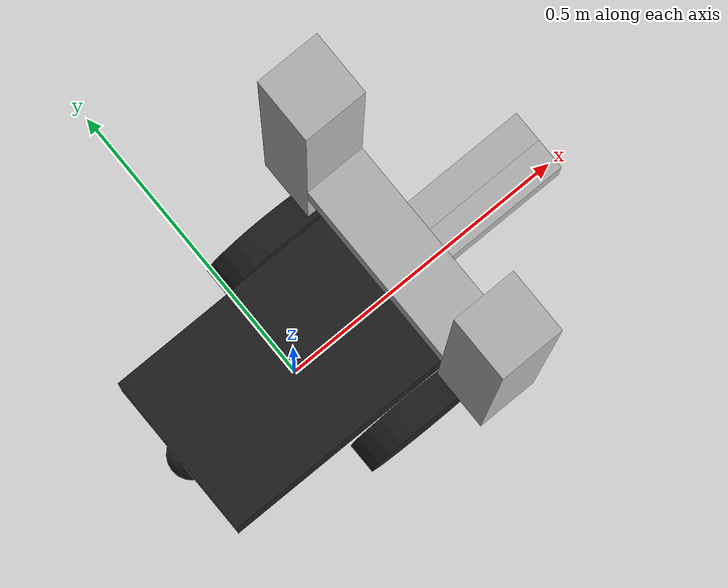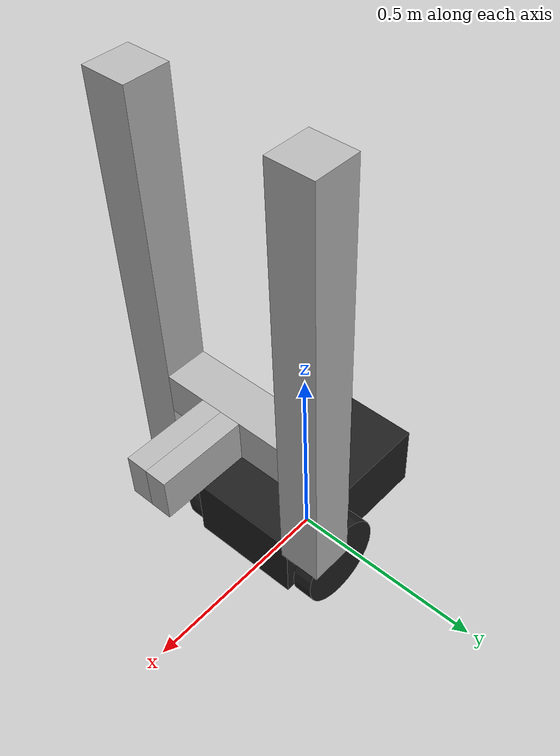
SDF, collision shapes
<?xml version="1.0" ?>
<sdf version="1.3">
  <model name="simple_mobile_manipulator">

    <include>
      <uri>model://my_gripper</uri>
      <pose>0.2 0 0.51 0 0 0</pose>
    </include>

    <include>
      <uri>model://pioneer2dx</uri>
      <pose>0 0 0 0 0 0</pose>
    </include>

    <joint name="arm_rgripper_joint" type="revolute">
      <parent>pioneer2dx::chassis</parent>
      <child>simple_gripper::right_riser</child>
      <axis>
        <limit>
          <lower>0</lower>
          <upper>0</upper>
        </limit>
        <xyz>0 0 1</xyz>
      </axis>
    </joint>

    <joint name="arm_lgripper_joint" type="revolute">
      <parent>pioneer2dx::chassis</parent>
      <child>simple_gripper::left_riser</child>
      <axis>
        <limit>
          <lower>0</lower>
          <upper>0</upper>
        </limit>
        <xyz>0 0 1</xyz>
      </axis>
    </joint>

  </model>
</sdf>

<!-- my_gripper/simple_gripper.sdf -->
<sdf version="1.4">
    <model name="simple_gripper">
        <link name="left_riser">
            <pose>0 -0.2 0.25 0 0 0</pose>
            <inertial>
                <pose>0 0 -0.25 0 0 0</pose>
                <inertia>
                    <ixx>0.01</ixx>
                    <ixy>0</ixy>
                    <ixz>0</ixz>
                    <iyy>0.01</iyy>
                    <iyz>0</iyz>
                    <izz>0.01</izz>
                </inertia>
                <mass>0.5</mass>
            </inertial>
            <collision name="collision">
                <geometry>
                    <box>
                        <size>0.1 0.1 1.0</size>
                    </box>
                </geometry>
            </collision>
            <visual name="visual">
                <geometry>
                    <box>
                        <size>0.1 0.1 1.0</size>
                    </box>
                </geometry>
                <material>
                    <script>Gazebo/Purple</script>
                </material>
            </visual>
        </link>
        <link name="right_riser">
            <pose>0 0.2 0.25 0 0 0</pose>
            <inertial>
                <pose>0 0 -0.25 0 0 0</pose>
                <inertia>
                    <ixx>0.01</ixx>
                    <ixy>0</ixy>
                    <ixz>0</ixz>
                    <iyy>0.01</iyy>
                    <iyz>0</iyz>
                    <izz>0.01</izz>
                </inertia>
                <mass>0.5</mass>
            </inertial>
            <collision name="collision">
                <geometry>
                    <box>
                        <size>0.1 0.1 1.0</size>
                    </box>
                </geometry>
            </collision>
            <visual name="visual">
                <geometry>
                    <box>
                        <size>0.1 0.1 1.0</size>
                    </box>
                </geometry>
                <material>
                    <script>Gazebo/Purple</script>
                </material>
            </visual>
        </link>
        <link name="palm">
            <pose>0.0 0.0 0.05 0 0 0</pose>
            <inertial>
                <inertia>
                    <ixx>0.01</ixx>
                    <ixy>0</ixy>
                    <ixz>0</ixz>
                    <iyy>0.01</iyy>
                    <iyz>0</iyz>
                    <izz>0.01</izz>
                </inertia>
                <mass>0.04</mass>
            </inertial>
            <collision name="collision">
                <geometry>
                    <box>
                        <size>0.1 0.3 0.1</size>
                    </box>
                </geometry>
            </collision>
            <visual name="visual">
                <geometry>
                    <box>
                        <size>0.1 0.3 0.1</size>
                    </box>
                </geometry>
                <material>
                    <script>Gazebo/Red</script>
                </material>
            </visual>
        </link>
        <link name="left_finger">
            <pose>0.15 -0.025 0.05 0 0 0</pose>
            <inertial>
                <inertia>
                    <ixx>0.01</ixx>
                    <ixy>0</ixy>
                    <ixz>0</ixz>
                    <iyy>0.01</iyy>
                    <iyz>0</iyz>
                    <izz>0.01</izz>
                </inertia>
                <mass>0.005</mass>
            </inertial>
            <collision name="collision">
                <geometry>
                    <box>
                        <size>0.2 0.05 0.1</size>
                    </box>
                </geometry>
            </collision>
            <visual name="visual">
                <geometry>
                    <box>
                        <size>0.2 0.05 0.1</size>
                    </box>
                </geometry>
                <material>
                    <script>Gazebo/Blue</script>
                </material>
            </visual>
        </link>
        <link name="right_finger">
            <pose>0.15 0.025 0.05 0 0 0</pose>
            <inertial>
                <inertia>
                    <ixx>0.01</ixx>
                    <ixy>0</ixy>
                    <ixz>0</ixz>
                    <iyy>0.01</iyy>
                    <iyz>0</iyz>
                    <izz>0.01</izz>
                </inertia>
                <mass>0.005</mass>
            </inertial>
            <collision name="collision">
                <geometry>
                    <box>
                        <size>0.2 0.05 0.1</size>
                    </box>
                </geometry>
            </collision>
            <visual name="visual">
                <geometry>
                    <box>
                        <size>0.2 0.05 0.1</size>
                    </box>
                </geometry>
                <material>
                    <script>Gazebo/Blue</script>
                </material>
            </visual>
        </link>
        <joint name="palm_right_riser" type="prismatic">
            <child>palm</child>
            <parent>right_riser</parent>
            <axis>
                <limit>
                    <lower>-0.25</lower>
                    <upper>0.65</upper>
                </limit>
                <xyz>0 0 1</xyz>
            </axis>
        </joint>
        <joint name="palm_left_riser" type="prismatic">
            <child>palm</child>
            <parent>left_riser</parent>
            <axis>
                <limit>
                    <lower>-0.25</lower>
                    <upper>0.65</upper>
                </limit>
                <xyz>0 0 1</xyz>
            </axis>
        </joint>
        <joint name="left_finger_palm" type="prismatic">
            <child>left_finger</child>
            <parent>palm</parent>
            <axis>
                <limit>
                    <lower>0</lower>
                    <upper>0.1</upper>
                </limit>
                <xyz>0 -1 0</xyz>
            </axis>
        </joint>
        <joint name="right_finger_palm" type="prismatic">
            <child>right_finger</child>
            <parent>palm</parent>
            <axis>
                <limit>
                    <lower>0</lower>
                    <upper>0.1</upper>
                </limit>
                <xyz>0 1 0</xyz>
            </axis>
        </joint>
    </model>
</sdf>

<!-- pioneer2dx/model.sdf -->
<sdf version="1.5">
  <model name="pioneer2dx">
    <link name="chassis">
      <pose>0 0 0.16 0 0 0</pose>
      <inertial>
        <mass>5.67</mass>
        <inertia>
          <ixx>0.07</ixx>
          <iyy>0.08</iyy>
          <izz>0.10</izz>
          <ixy>0</ixy>
          <ixz>0</ixz>
          <iyz>0</iyz>
        </inertia>
      </inertial>
      <collision name="collision">
        <geometry>
          <box>
            <size>0.445 0.277 0.17</size>
          </box>
        </geometry>
      </collision>
      <collision name="castor_collision">
        <pose>-0.200 0 -0.12 0 0 0</pose>
        <geometry>
          <sphere>
            <radius>0.04</radius>
          </sphere>
        </geometry>
        <surface>
          <friction>
            <ode>
              <mu>0</mu>
              <mu2>0</mu2>
              <slip1>1.0</slip1>
              <slip2>1.0</slip2>
            </ode>
          </friction>
        </surface>
      </collision>
      <visual name="visual">
        <pose>0 0 0.04 0 0 0</pose>
        <geometry>
          <mesh>
            <uri>model://../model_source/models/pioneer2dx/meshes/chassis.dae</uri>
          </mesh>
        </geometry>
      </visual>
      <visual name="castor_visual">
        <pose>-0.200 0 -0.12 0 0 0</pose>
        <geometry>
          <sphere>
            <radius>0.04</radius>
          </sphere>
        </geometry>
        <material>
          <script>
            <uri>file://media/materials/scripts/gazebo.material</uri>
            <name>Gazebo/FlatBlack</name>
          </script>
        </material>
      </visual>
    </link>
    <link name="right_wheel">
      <pose>0.1 -.17 0.11 0 1.5707 1.5707</pose>
      <inertial>
        <mass>1.5</mass>
        <inertia>
          <ixx>0.0051</ixx>
          <iyy>0.0051</iyy>
          <izz>0.0090</izz>
          <ixy>0</ixy>
          <ixz>0</ixz>
          <iyz>0</iyz>
        </inertia>
      </inertial>
      <collision name="collision">
        <geometry>
          <cylinder>
            <radius>0.11</radius>
            <length>0.05</length>
          </cylinder>
        </geometry>
        <surface>
          <friction>
            <ode>
              <mu>100000.0</mu>
              <mu2>100000.0</mu2>
              <slip1>0.0</slip1>
              <slip2>0.0</slip2>
            </ode>
          </friction>
        </surface>
      </collision>
      <visual name="visual">
        <geometry>
          <cylinder>
            <radius>0.11</radius>
            <length>0.05</length>
          </cylinder>
        </geometry>
        <material>
          <script>
            <uri>file://media/materials/scripts/gazebo.material</uri>
            <name>Gazebo/FlatBlack</name>
          </script>
        </material>
      </visual>
    </link>
    <link name="left_wheel">
      <pose>0.1 .17 0.11 0 1.5707 1.5707</pose>
      <inertial>
        <mass>1.5</mass>
        <inertia>
          <ixx>0.0051</ixx>
          <iyy>0.0051</iyy>
          <izz>0.0090</izz>
          <ixy>0</ixy>
          <ixz>0</ixz>
          <iyz>0</iyz>
        </inertia>
      </inertial>
      <collision name="collision">
        <geometry>
          <cylinder>
            <radius>0.11</radius>
            <length>0.05</length>
          </cylinder>
        </geometry>
        <surface>
          <friction>
            <ode>
              <mu>100000.0</mu>
              <mu2>100000.0</mu2>
              <slip1>0.0</slip1>
              <slip2>0.0</slip2>
            </ode>
          </friction>
        </surface>
      </collision>
      <visual name="visual">
        <geometry>
          <cylinder>
            <radius>0.11</radius>
            <length>0.05</length>
          </cylinder>
        </geometry>
        <material>
          <script>
            <uri>file://media/materials/scripts/gazebo.material</uri>
            <name>Gazebo/FlatBlack</name>
          </script>
        </material>
      </visual>
    </link>
    <joint type="revolute" name="left_wheel_hinge">
      <pose>0 0 -0.03 0 0 0</pose>
      <child>left_wheel</child>
      <parent>chassis</parent>
      <axis>
        <xyz>0 1 0</xyz>
        <use_parent_model_frame>true</use_parent_model_frame>
      </axis>
    </joint>
    <joint type="revolute" name="right_wheel_hinge">
      <pose>0 0 0.03 0 0 0</pose>
      <child>right_wheel</child>
      <parent>chassis</parent>
      <axis>
        <xyz>0 1 0</xyz>
        <use_parent_model_frame>true</use_parent_model_frame>
      </axis>
    </joint>
    <plugin filename="libDiffDrivePlugin.so" name="diff_drive">
      <left_joint>left_wheel_hinge</left_joint>
      <right_joint>right_wheel_hinge</right_joint>
      <torque>5</torque>
    </plugin>
  </model>
</sdf>
